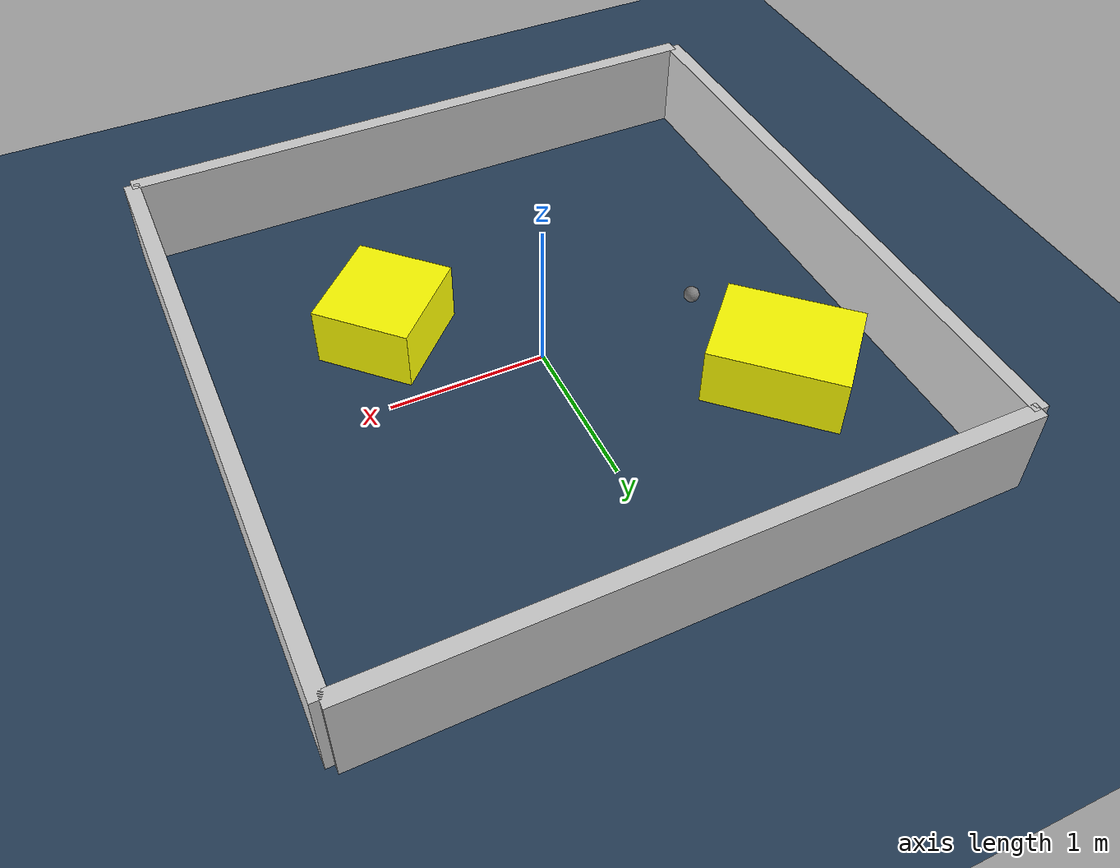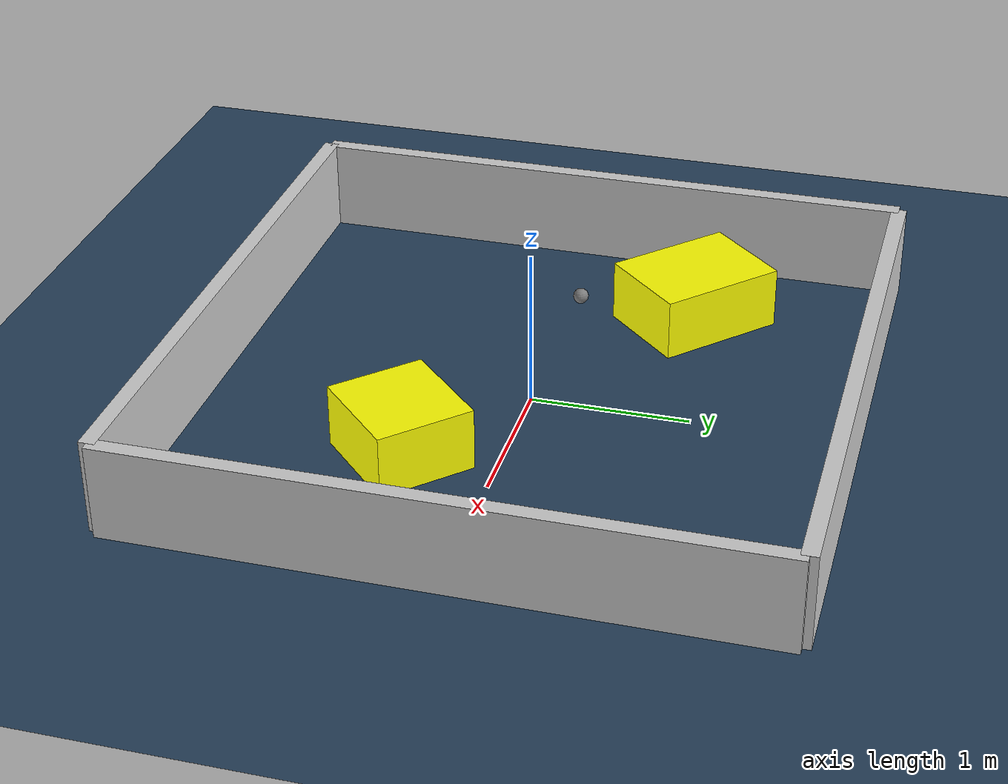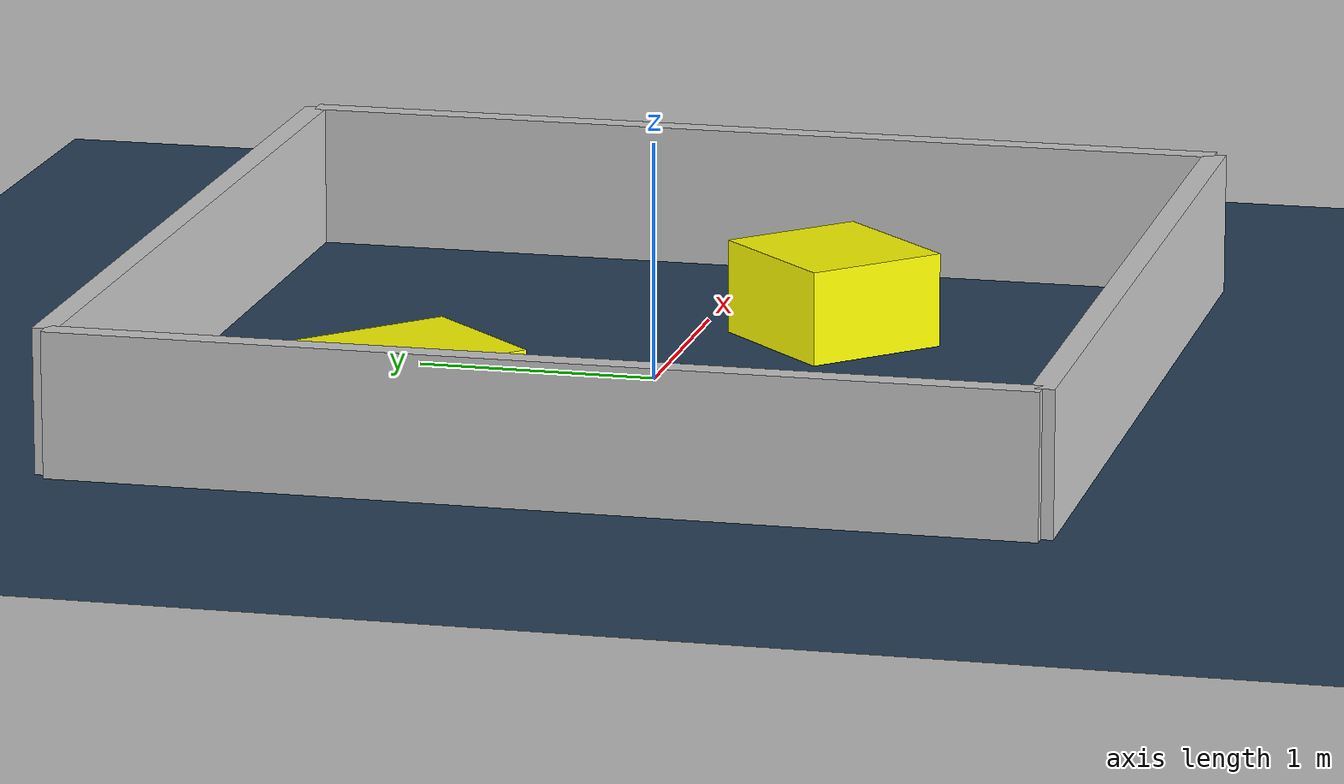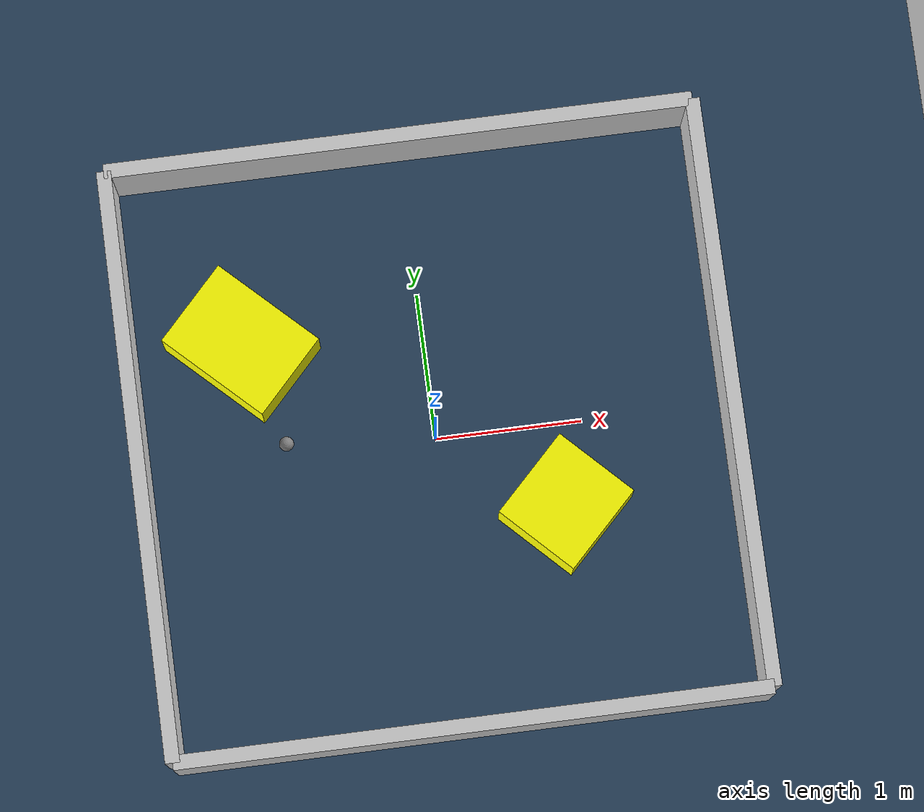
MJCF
<?xml version="1.0" ?>
<mujoco model="generated_environment">
  <option timestep="0.01" integrator="RK4" cone="elliptic"/>
  <default>
    <geom density="1"/>
  </default>
  <asset>
    <texture builtin="gradient" height="3072" rgb1="0.3 0.5 0.7" rgb2="0 0 0" type="skybox" width="512"/>
    <texture builtin="checker" height="300" mark="edge" markrgb="0.8 0.8 0.8" name="groundplane" rgb1="0.2 0.3 0.4" rgb2="0.1 0.2 0.3" type="2d" width="300"/>
    <material name="groundplane" reflectance="0.2" texrepeat="5 5" texture="groundplane" texuniform="true"/>
    <material name="robot" rgba="0.0 1.0 0.0 1"/>
  </asset>
  <worldbody>
    <light dir="0 0 -1" directional="true" pos="0 0 1.5"/>
    <geom condim="4" friction="1.0 0.005 0.001" material="groundplane" name="floor" size="0 0 0.05" type="plane"/>
    <body name="walls">
      <geom name="wall_1" condim="4" pos="-2.0 0.0 0.3" rgba="0.800000011920929 0.800000011920929 0.800000011920929 1.0" size="0.05 2.0 0.3" type="box"/>
      <geom name="wall_2" condim="4" pos="2.0 0.0 0.3" rgba="0.800000011920929 0.800000011920929 0.800000011920929 1.0" size="0.05 2.0 0.3" type="box"/>
      <geom name="wall_3" condim="4" pos="0.0 -2.0 0.3" rgba="0.800000011920929 0.800000011920929 0.800000011920929 1.0" size="2.0 0.05 0.3" type="box"/>
      <geom name="wall_4" condim="4" pos="0.0 2.0 0.3" rgba="0.800000011920929 0.800000011920929 0.800000011920929 1.0" size="2.0 0.05 0.3" type="box"/>
    </body>
    <body name="robot">
      <joint name="joint_x" type="slide" pos="0 0 0" axis="1 0 0"/>
      <joint name="joint_y" type="slide" pos="0 0 0" axis="0 1 0"/>
      <geom name="robot" type="sphere" pos="-1.008184479821393 0.06637563827386006 0.2" size="0.05" mass="5." friction="1.0 0.005 0.0001" condim="4"/>
      <site name="sensor_ball"/>
    </body>
    <body name="obstacle_1_movable">
      <geom name="obstacle_1_movable" condim="4" pos="0.8093082053490568 -0.5830034583044539 0.2" euler="0 0 45.018181653279775" friction="1.0 0.005 0.001" rgba="1 1 0 1" size="0.33436916023210667 0.31386680033107345 0.2" type="box" mass="0.1"/>
      <joint type="free"/>
    </body>
    <body name="obstacle_2_movable">
      <geom name="obstacle_2_movable" condim="4" pos="-1.2283696394483548 0.7810290799354136 0.2" euler="0 0 316.3881081978035" friction="1.0 0.005 0.001" rgba="1 1 0 1" size="0.42367733388825773 0.31973676572324405 0.2" type="box" mass="0.1"/>
      <joint type="free"/>
    </body>
  </worldbody>
  <actuator>
    <motor name="actuator_x" joint="joint_x" gear="1" ctrlrange="-1 1"/>
    <motor name="actuator_y" joint="joint_y" gear="1" ctrlrange="-1 1"/>
  </actuator>
</mujoco>
